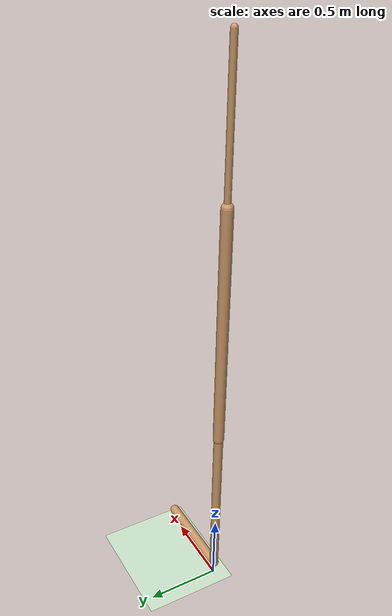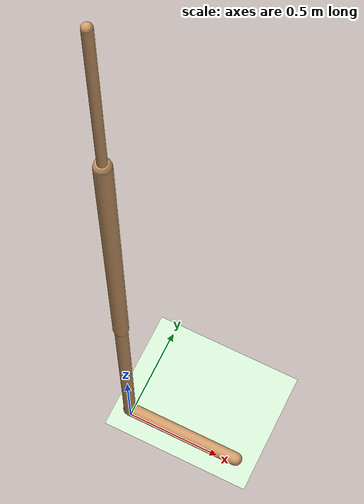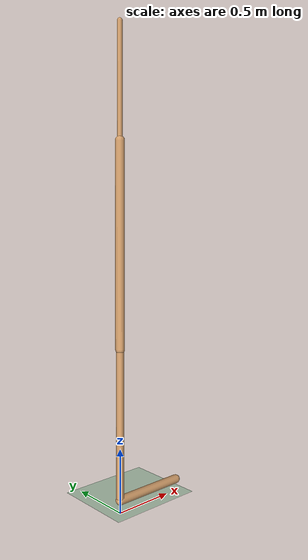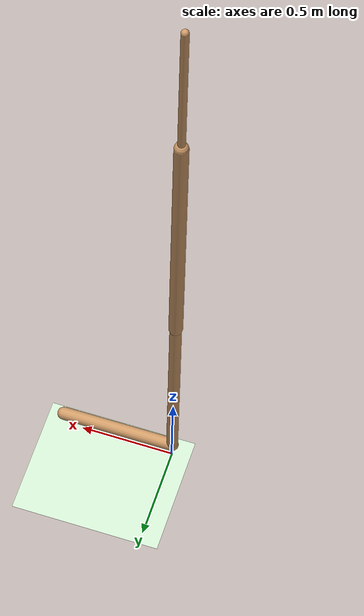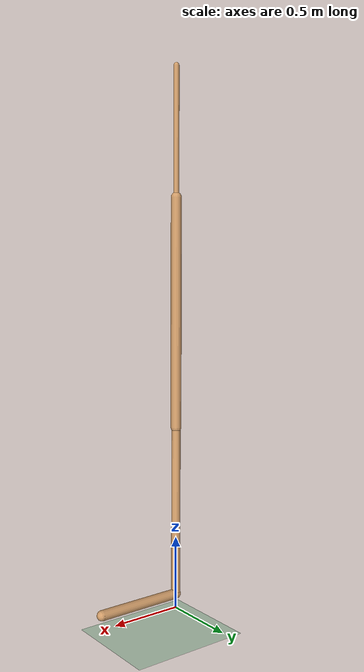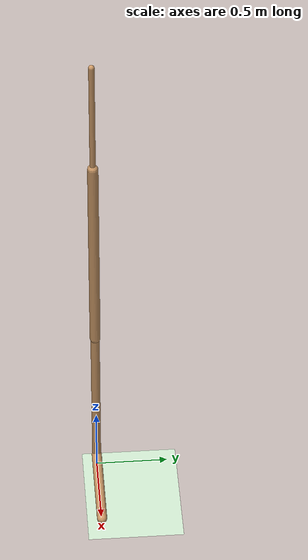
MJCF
<mujoco model="walker2d">
  <compiler angle="degree" inertiafromgeom="true" />
  <default>
    <joint armature="0.01" damping=".1" limited="true" />
    <geom conaffinity="0" condim="3" contype="1" density="1000" friction=".7 .1 .1" rgba="0.8 0.6 .4 1" />
  </default>
  <option integrator="RK4" timestep="0.002" />
  <worldbody>
    <light cutoff="100" diffuse="1 1 1" dir="-0 0 -1.3" directional="true" exponent="1" pos="0 0 1.3" specular=".1 .1 .1" />
    <geom conaffinity="1" condim="3" name="floor" pos="0 0 0" rgba="0.8 0.9 0.8 1" size="40 40 40" type="plane" material="MatPlane" />
    <body name="torso" pos="0 0 3.2529412269592286">
      <camera name="track" mode="trackcom" pos="0 -5 -1.25" xyaxes="1 0 0 0 0 1" />
      <joint armature="0" axis="1 0 0" damping="0" limited="false" name="rootx" pos="0 0 -1.25" stiffness="0" type="slide" />
      <joint armature="0" axis="0 0 1" damping="0" limited="false" name="rootz" pos="0 0 -1.25" ref="1.25" stiffness="0" type="slide" />
      <joint armature="0" axis="0 1 0" damping="0" limited="false" name="rooty" pos="0 0 0" stiffness="0" type="hinge" />
      <geom friction="0.9" name="torso_geom" size="0.019498085603117943 0.42805731296539307" type="capsule" />
      <body name="thigh" pos="0 0 -0.42805731296539307">
        <joint axis="0 -1 0" name="thigh_joint" pos="0 0 0" range="-150 0" type="hinge" />
        <site name="torso_thigh_site" pos="0 0 0" size="0.01" type="sphere" rgba="1 0 0 0.5" />
        <geom friction="0.9" pos="0 0 -0.776452362537384" name="thigh_geom" size="0.03598904237151146 0.776452362537384" type="capsule" />
        <body name="leg" pos="0 0 -2.1388943195343018">
          <joint axis="0 -1 0" name="leg_joint" pos="0 0 0.5859895944595337" range="-150 0" type="hinge" />
          <site name="thigh_leg_site" pos="0 0 0.25" size="0.01" type="sphere" rgba="1 0 0 0.5" />
          <geom friction="0.9" name="leg_geom" size="0.03073257766664028 0.5859895944595337" type="capsule" />
          <body name="foot" pos="0.6042696833610535 0 -0.6859895944595337">
            <joint axis="0 -1 0" name="foot_joint" pos="-0.6042696833610535 0 0.1" range="-45 45" type="hinge" />
            <site name="leg_foot_site" pos="-0.2 0 0.1" size="0.01" type="sphere" rgba="1 0 0 0.5" />
            <geom friction="0.9" pos="-0.30213484168052673 0 0.1" quat="0.70710678118654757 0 -0.70710678118654746 0" name="foot_geom" size="0.03494570404291153 0.30213484168052673" type="capsule" />
          </body>
        </body>
      </body>

      <body name="thigh_left" pos="0 0 -0.42805731296539307">
        <joint axis="0 -1 0" name="thigh_left_joint" pos="0 0 0" range="-150 0" type="hinge" />
        <site name="torso_thigh_left_site" pos="0 0 0" size="0.01" type="sphere" rgba="1 0 0 0.5" />
        <geom friction="0.9" name="thigh_left_geom" rgba=".7 .3 .6 1" size="0.03598904237151146 0.776452362537384" pos="0 0 -0.776452362537384" type="capsule" />
        <body name="leg_left" pos="0 0 -2.1388943195343018">
          <joint axis="0 -1 0" name="leg_left_joint" pos="0 0 0.5859895944595337" range="-150 0" type="hinge" />
          <site name="thigh_leg_left_site" pos="0 0 0.25" size="0.01" type="sphere" rgba="1 0 0 0.5" />
          <geom friction="0.9" name="leg_left_geom" rgba=".7 .3 .6 1" size="0.03073257766664028 0.5859895944595337" type="capsule" />
          <body name="foot_left" pos="0.6042696833610535 0 -0.6859895944595337">
            <joint axis="0 -1 0" name="foot_left_joint" pos="-0.6042696833610535 0 0.1" range="-45 45" type="hinge" />
            <site name="leg_foot_left_site" pos="-0.2 0 0.1" size="0.01" type="sphere" rgba="1 0 0 0.5" />
            <geom friction="1.9" name="foot_left_geom" rgba=".7 .3 .6 1" size="0.03494570404291153 0.30213484168052673" pos="-0.30213484168052673 0 0.1" type="capsule" quat="0.70710678118654757 0 -0.70710678118654746 0" />
          </body>
        </body>
      </body>
    </body>
  </worldbody>
  <actuator>

    <motor ctrllimited="true" ctrlrange="-1.0 1.0" gear="178.78573752298564" joint="thigh_joint" />
    <motor ctrllimited="true" ctrlrange="-1.0 1.0" gear="138.36552286459658" joint="leg_joint" />
    <motor ctrllimited="true" ctrlrange="-1.0 1.0" gear="102.49103964989914" joint="foot_joint" />
    <motor ctrllimited="true" ctrlrange="-1.0 1.0" gear="178.78573752298564" joint="thigh_left_joint" />
    <motor ctrllimited="true" ctrlrange="-1.0 1.0" gear="138.36552286459658" joint="leg_left_joint" />
    <motor ctrllimited="true" ctrlrange="-1.0 1.0" gear="102.49103964989914" joint="foot_left_joint" />

  </actuator>
    <asset>
        <texture type="skybox" builtin="gradient" rgb1=".4 .5 .6" rgb2="0 0 0" width="100" height="100" />
        <texture builtin="flat" height="1278" mark="cross" markrgb="1 1 1" name="texgeom" random="0.01" rgb1="0.8 0.6 0.4" rgb2="0.8 0.6 0.4" type="cube" width="127" />
        <texture builtin="checker" height="100" name="texplane" rgb1="0 0 0" rgb2="0.8 0.8 0.8" type="2d" width="100" />
        <material name="MatPlane" reflectance="0.5" shininess="1" specular="1" texrepeat="60 60" texture="texplane" />
        <material name="geom" texture="texgeom" texuniform="true" />
    </asset>

  <sensor>
    <force site="torso_thigh_site" name="torso_thigh_sensor" />
    <force site="thigh_leg_site" name="thigh_leg_sensor" />
    <force site="leg_foot_site" name="leg_foot_sensor" />
    <force site="torso_thigh_left_site" name="torso_thigh_left_sensor" />
    <force site="thigh_leg_left_site" name="thigh_leg_left_sensor" />
    <force site="leg_foot_left_site" name="leg_foot_left_sensor" />
  </sensor>
</mujoco>
